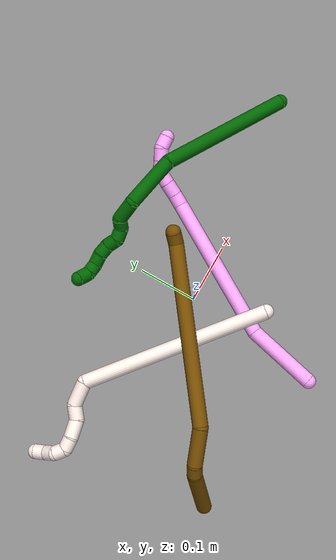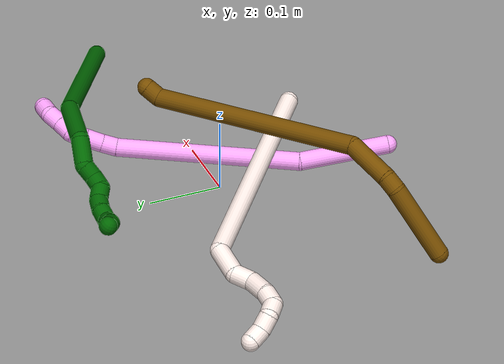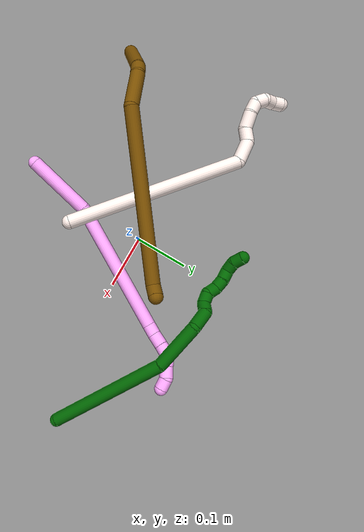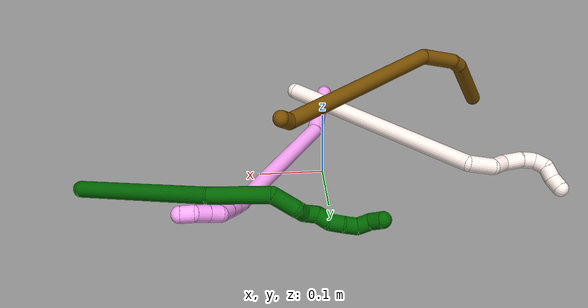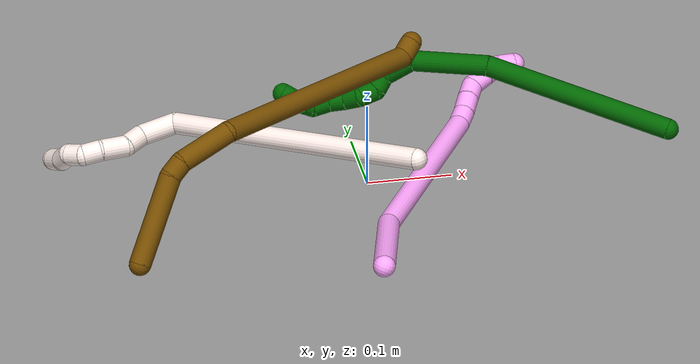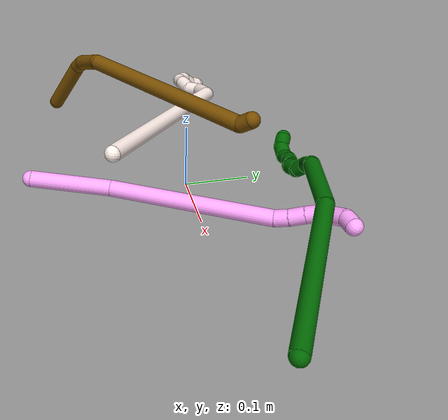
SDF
<sdf version="1.7">
 <world name="default">
  <model name="photoneo_s_sensor">
   <static>1</static>
   <pose>0 0 2 1.57079 1.57079 3.14159</pose>
   <link name="link">
    <inertial><mass>0.1</mass></inertial>
    <sensor name="sensor" type="depth">
     <update_rate>30</update_rate>
     <camera>
      <horizontal_fov>1.22</horizontal_fov>
      <image><width>1920</width><height>1200</height><format>B8G8R8</format></image>
      <clip><near>0.1</near><far>4</far></clip>
      <depth_camera><output>points</output></depth_camera>
     </camera>
     <plugin name="camera_plugin" filename="libgazebo_ros_depth_camera.so">
      <baseline>0.2</baseline>
      <alwaysOn>1</alwaysOn>
      <updateRate>0.0</updateRate>
      <cameraName>camera_ir</cameraName>
      <imageTopicName>/camera/color/image_raw</imageTopicName>
      <cameraInfoTopicName>/camera/color/camera_info</cameraInfoTopicName>
      <depthImageTopicName>/camera/depth/image_raw</depthImageTopicName>
      <depthImageCameraInfoTopicName>/camera/depth/camera_info</depthImageCameraInfoTopicName>
      <pointCloudTopicName>/camera/depth/points</pointCloudTopicName>
      <frameName>fr_optical</frameName>
      <pointCloudCutoff>0.1</pointCloudCutoff>
      <pointCloudCutoffMax>2.0</pointCloudCutoffMax>
      <distortionK1>0</distortionK1>
      <distortionK2>0</distortionK2>
      <distortionK3>0</distortionK3>
      <distortionT1>0</distortionT1>
      <distortionT2>0</distortionT2>
      <CxPrime>0</CxPrime>
      <Cx>0</Cx>
      <Cy>0</Cy>
      <focalLength>0</focalLength>
      <hackBaseline>0</hackBaseline>
     </plugin>
    </sensor>
   </link>
  </model>
  <model name="bin">
   <static>1</static>
   <link name="bottom">
    <collision name="collision-bottom">
     <pose>0 0 -0.01 0 -0 0</pose>
     <geometry><box><size>0.8 0.6 0.02</size></box></geometry>
     <surface>
      <friction><ode><mu>100</mu><mu2>100</mu2></ode></friction>
      <contact><collide_bitmask>65535</collide_bitmask></contact>
     </surface>
    </collision>
   </link>
   <link name="west_wall">
    <collision name="collision-west_wall">
     <pose>-0.41 0 0.1 0 -0 0</pose>
     <geometry><box><size>0.02 0.6 0.2</size></box></geometry>
     <surface>
      <friction><ode><mu>100</mu><mu2>100</mu2></ode></friction>
      <contact><collide_bitmask>65535</collide_bitmask></contact>
     </surface>
    </collision>
   </link>
   <link name="east_wall">
    <collision name="collision-east_wall">
     <pose>0.41 0 0.1 0 -0 0</pose>
     <geometry><box><size>0.02 0.6 0.2</size></box></geometry>
     <surface>
      <friction><ode><mu>100</mu><mu2>100</mu2></ode></friction>
      <contact><collide_bitmask>65535</collide_bitmask></contact>
     </surface>
    </collision>
   </link>
   <link name="south_wall">
    <collision name="collision-south_wall">
     <pose>0 -0.31 0.1 0 -0 0</pose>
     <geometry><box><size>0.8 0.02 0.2</size></box></geometry>
     <surface>
      <friction><ode><mu>100</mu><mu2>100</mu2></ode></friction>
      <contact><collide_bitmask>65535</collide_bitmask></contact>
     </surface>
    </collision>
   </link>
   <link name="north_wall">
    <collision name="collision-north_wall">
     <pose>0 0.31 0.1 0 -0 0</pose>
     <geometry><box><size>0.8 0.02 0.2</size></box></geometry>
     <surface>
      <friction><ode><mu>100</mu><mu2>100</mu2></ode></friction>
      <contact><collide_bitmask>65535</collide_bitmask></contact>
     </surface>
    </collision>
   </link>
  </model>
  <model name="4">
   <static>0</static>
   <link name="4">
    <collision name="collision-cylinder-e_1_1_4">
     <pose>0.022669 0.05482 0.012873 -1.34015 0.382721 -0.304637</pose>
     <geometry><cylinder><radius>0.0125</radius><length>0.121406</length></cylinder></geometry>
     <surface>
      <friction><ode><mu>1.16</mu><mu2>1.16</mu2><slip1>0</slip1><slip2>0</slip2></ode></friction>
      <contact><ode><kp>1e+06</kp><kd>1</kd><max_vel>0</max_vel><min_depth>0.001</min_depth></ode></contact>
     </surface>
    </collision>
    <visual name="visual-cylinder-e_1_1_4">
     <pose>0.022669 0.05482 0.012873 -1.34015 0.382721 -0.304637</pose>
     <geometry><cylinder><radius>0.0125</radius><length>0.121406</length></cylinder></geometry>
     <material><ambient>1 0.65098 0.996078 1</ambient></material>
    </visual>
    <collision name="collision-cylinder-e_2_4_5">
     <pose>0.113514 0.200778 0.078413 -1.0468 0.574746 -0.337871</pose>
     <geometry><cylinder><radius>0.0125</radius><length>0.250821</length></cylinder></geometry>
     <surface>
      <friction><ode><mu>1.16</mu><mu2>1.16</mu2><slip1>0</slip1><slip2>0</slip2></ode></friction>
      <contact><ode><kp>1e+06</kp><kd>1</kd><max_vel>0</max_vel><min_depth>0.001</min_depth></ode></contact>
     </surface>
    </collision>
    <visual name="visual-cylinder-e_2_4_5">
     <pose>0.113514 0.200778 0.078413 -1.0468 0.574746 -0.337871</pose>
     <geometry><cylinder><radius>0.0125</radius><length>0.250821</length></cylinder></geometry>
     <material><ambient>1 0.65098 0.996078 1</ambient></material>
    </visual>
    <collision name="collision-cylinder-e_3_5_6">
     <pose>0.185801 0.299186 0.137616 -0.838447 0.398009 -0.179267</pose>
     <geometry><cylinder><radius>0.0125</radius><length>0.021214</length></cylinder></geometry>
     <surface>
      <friction><ode><mu>1.16</mu><mu2>1.16</mu2><slip1>0</slip1><slip2>0</slip2></ode></friction>
      <contact><ode><kp>1e+06</kp><kd>1</kd><max_vel>0</max_vel><min_depth>0.001</min_depth></ode></contact>
     </surface>
    </collision>
    <visual name="visual-cylinder-e_3_5_6">
     <pose>0.185801 0.299186 0.137616 -0.838447 0.398009 -0.179267</pose>
     <geometry><cylinder><radius>0.0125</radius><length>0.021214</length></cylinder></geometry>
     <material><ambient>1 0.65098 0.996078 1</ambient></material>
    </visual>
    <collision name="collision-cylinder-e_4_6_7">
     <pose>0.193246 0.314536 0.15204 -0.797485 0.287125 -0.121657</pose>
     <geometry><cylinder><radius>0.0125</radius><length>0.023542</length></cylinder></geometry>
     <surface>
      <friction><ode><mu>1.16</mu><mu2>1.16</mu2><slip1>0</slip1><slip2>0</slip2></ode></friction>
      <contact><ode><kp>1e+06</kp><kd>1</kd><max_vel>0</max_vel><min_depth>0.001</min_depth></ode></contact>
     </surface>
    </collision>
    <visual name="visual-cylinder-e_4_6_7">
     <pose>0.193246 0.314536 0.15204 -0.797485 0.287125 -0.121657</pose>
     <geometry><cylinder><radius>0.0125</radius><length>0.023542</length></cylinder></geometry>
     <material><ambient>1 0.65098 0.996078 1</ambient></material>
    </visual>
    <collision name="collision-cylinder-e_5_7_8">
     <pose>0.200118 0.329986 0.167058 -0.801889 0.332164 -0.141877</pose>
     <geometry><cylinder><radius>0.0125</radius><length>0.021703</length></cylinder></geometry>
     <surface>
      <friction><ode><mu>1.16</mu><mu2>1.16</mu2><slip1>0</slip1><slip2>0</slip2></ode></friction>
      <contact><ode><kp>1e+06</kp><kd>1</kd><max_vel>0</max_vel><min_depth>0.001</min_depth></ode></contact>
     </surface>
    </collision>
    <visual name="visual-cylinder-e_5_7_8">
     <pose>0.200118 0.329986 0.167058 -0.801889 0.332164 -0.141877</pose>
     <geometry><cylinder><radius>0.0125</radius><length>0.021703</length></cylinder></geometry>
     <material><ambient>1 0.65098 0.996078 1</ambient></material>
    </visual>
    <collision name="collision-cylinder-e_6_8_9">
     <pose>0.209972 0.338886 0.181989 -0.193375 0.671578 -0.067674</pose>
     <geometry><cylinder><radius>0.0125</radius><length>0.020301</length></cylinder></geometry>
     <surface>
      <friction><ode><mu>1.16</mu><mu2>1.16</mu2><slip1>0</slip1><slip2>0</slip2></ode></friction>
      <contact><ode><kp>1e+06</kp><kd>1</kd><max_vel>0</max_vel><min_depth>0.001</min_depth></ode></contact>
     </surface>
    </collision>
    <visual name="visual-cylinder-e_6_8_9">
     <pose>0.209972 0.338886 0.181989 -0.193375 0.671578 -0.067674</pose>
     <geometry><cylinder><radius>0.0125</radius><length>0.020301</length></cylinder></geometry>
     <material><ambient>1 0.65098 0.996078 1</ambient></material>
    </visual>
    <collision name="collision-cylinder-e_7_9_10">
     <pose>0.22292 0.342519 0.197624 -0.262588 0.685195 -0.094127</pose>
     <geometry><cylinder><radius>0.0125</radius><length>0.020962</length></cylinder></geometry>
     <surface>
      <friction><ode><mu>1.16</mu><mu2>1.16</mu2><slip1>0</slip1><slip2>0</slip2></ode></friction>
      <contact><ode><kp>1e+06</kp><kd>1</kd><max_vel>0</max_vel><min_depth>0.001</min_depth></ode></contact>
     </surface>
    </collision>
    <visual name="visual-cylinder-e_7_9_10">
     <pose>0.22292 0.342519 0.197624 -0.262588 0.685195 -0.094127</pose>
     <geometry><cylinder><radius>0.0125</radius><length>0.020962</length></cylinder></geometry>
     <material><ambient>1 0.65098 0.996078 1</ambient></material>
    </visual>
    <collision name="collision-cylinder-e_8_10_2">
     <pose>0.238306 0.343047 0.21009 0.328794 1.06128 0.194075</pose>
     <geometry><cylinder><radius>0.0125</radius><length>0.020052</length></cylinder></geometry>
     <surface>
      <friction><ode><mu>1.16</mu><mu2>1.16</mu2><slip1>0</slip1><slip2>0</slip2></ode></friction>
      <contact><ode><kp>1e+06</kp><kd>1</kd><max_vel>0</max_vel><min_depth>0.001</min_depth></ode></contact>
     </surface>
    </collision>
    <visual name="visual-cylinder-e_8_10_2">
     <pose>0.238306 0.343047 0.21009 0.328794 1.06128 0.194075</pose>
     <geometry><cylinder><radius>0.0125</radius><length>0.020052</length></cylinder></geometry>
     <material><ambient>1 0.65098 0.996078 1</ambient></material>
    </visual>
    <collision name="collision-sphere-2">
     <pose>0.247058 0.341468 0.214718 0 -0 0</pose>
     <geometry><sphere><radius>0.0125</radius></sphere></geometry>
     <surface>
      <friction><ode><mu>1.16</mu><mu2>1.16</mu2><slip1>0</slip1><slip2>0</slip2></ode></friction>
      <contact><ode><kp>1e+06</kp><kd>1</kd><max_vel>0</max_vel><min_depth>0.001</min_depth></ode></contact>
     </surface>
    </collision>
    <visual name="visual-sphere-2">
     <pose>0.247058 0.341468 0.214718 0 -0 0</pose>
     <geometry><sphere><radius>0.0125</radius></sphere></geometry>
     <material><ambient>1 0.65098 0.996078 1</ambient></material>
    </visual>
    <collision name="collision-sphere-10">
     <pose>0.229553 0.344626 0.205462 0 -0 0</pose>
     <geometry><sphere><radius>0.0125</radius></sphere></geometry>
     <surface>
      <friction><ode><mu>1.16</mu><mu2>1.16</mu2><slip1>0</slip1><slip2>0</slip2></ode></friction>
      <contact><ode><kp>1e+06</kp><kd>1</kd><max_vel>0</max_vel><min_depth>0.001</min_depth></ode></contact>
     </surface>
    </collision>
    <visual name="visual-sphere-10">
     <pose>0.229553 0.344626 0.205462 0 -0 0</pose>
     <geometry><sphere><radius>0.0125</radius></sphere></geometry>
     <material><ambient>1 0.65098 0.996078 1</ambient></material>
    </visual>
    <collision name="collision-sphere-9">
     <pose>0.216288 0.340413 0.189787 0 -0 0</pose>
     <geometry><sphere><radius>0.0125</radius></sphere></geometry>
     <surface>
      <friction><ode><mu>1.16</mu><mu2>1.16</mu2><slip1>0</slip1><slip2>0</slip2></ode></friction>
      <contact><ode><kp>1e+06</kp><kd>1</kd><max_vel>0</max_vel><min_depth>0.001</min_depth></ode></contact>
     </surface>
    </collision>
    <visual name="visual-sphere-9">
     <pose>0.216288 0.340413 0.189787 0 -0 0</pose>
     <geometry><sphere><radius>0.0125</radius></sphere></geometry>
     <material><ambient>1 0.65098 0.996078 1</ambient></material>
    </visual>
    <collision name="collision-sphere-4">
     <pose>0.045339 0.10964 0.025747 0 -0 0</pose>
     <geometry><sphere><radius>0.0125</radius></sphere></geometry>
     <surface>
      <friction><ode><mu>1.16</mu><mu2>1.16</mu2><slip1>0</slip1><slip2>0</slip2></ode></friction>
      <contact><ode><kp>1e+06</kp><kd>1</kd><max_vel>0</max_vel><min_depth>0.001</min_depth></ode></contact>
     </surface>
    </collision>
    <visual name="visual-sphere-4">
     <pose>0.045339 0.10964 0.025747 0 -0 0</pose>
     <geometry><sphere><radius>0.0125</radius></sphere></geometry>
     <material><ambient>1 0.65098 0.996078 1</ambient></material>
    </visual>
    <collision name="collision-sphere-1">
     <geometry><sphere><radius>0.0125</radius></sphere></geometry>
     <surface>
      <friction><ode><mu>1.16</mu><mu2>1.16</mu2><slip1>0</slip1><slip2>0</slip2></ode></friction>
      <contact><ode><kp>1e+06</kp><kd>1</kd><max_vel>0</max_vel><min_depth>0.001</min_depth></ode></contact>
     </surface>
    </collision>
    <visual name="visual-sphere-1">
     <geometry><sphere><radius>0.0125</radius></sphere></geometry>
     <material><ambient>1 0.65098 0.996078 1</ambient></material>
    </visual>
    <collision name="collision-sphere-8">
     <pose>0.203656 0.337359 0.174191 0 -0 0</pose>
     <geometry><sphere><radius>0.0125</radius></sphere></geometry>
     <surface>
      <friction><ode><mu>1.16</mu><mu2>1.16</mu2><slip1>0</slip1><slip2>0</slip2></ode></friction>
      <contact><ode><kp>1e+06</kp><kd>1</kd><max_vel>0</max_vel><min_depth>0.001</min_depth></ode></contact>
     </surface>
    </collision>
    <visual name="visual-sphere-8">
     <pose>0.203656 0.337359 0.174191 0 -0 0</pose>
     <geometry><sphere><radius>0.0125</radius></sphere></geometry>
     <material><ambient>1 0.65098 0.996078 1</ambient></material>
    </visual>
    <collision name="collision-sphere-5">
     <pose>0.18169 0.291916 0.131079 0 -0 0</pose>
     <geometry><sphere><radius>0.0125</radius></sphere></geometry>
     <surface>
      <friction><ode><mu>1.16</mu><mu2>1.16</mu2><slip1>0</slip1><slip2>0</slip2></ode></friction>
      <contact><ode><kp>1e+06</kp><kd>1</kd><max_vel>0</max_vel><min_depth>0.001</min_depth></ode></contact>
     </surface>
    </collision>
    <visual name="visual-sphere-5">
     <pose>0.18169 0.291916 0.131079 0 -0 0</pose>
     <geometry><sphere><radius>0.0125</radius></sphere></geometry>
     <material><ambient>1 0.65098 0.996078 1</ambient></material>
    </visual>
    <collision name="collision-sphere-6">
     <pose>0.189912 0.306457 0.144154 0 -0 0</pose>
     <geometry><sphere><radius>0.0125</radius></sphere></geometry>
     <surface>
      <friction><ode><mu>1.16</mu><mu2>1.16</mu2><slip1>0</slip1><slip2>0</slip2></ode></friction>
      <contact><ode><kp>1e+06</kp><kd>1</kd><max_vel>0</max_vel><min_depth>0.001</min_depth></ode></contact>
     </surface>
    </collision>
    <visual name="visual-sphere-6">
     <pose>0.189912 0.306457 0.144154 0 -0 0</pose>
     <geometry><sphere><radius>0.0125</radius></sphere></geometry>
     <material><ambient>1 0.65098 0.996078 1</ambient></material>
    </visual>
    <collision name="collision-sphere-7">
     <pose>0.196579 0.322614 0.159925 0 -0 0</pose>
     <geometry><sphere><radius>0.0125</radius></sphere></geometry>
     <surface>
      <friction><ode><mu>1.16</mu><mu2>1.16</mu2><slip1>0</slip1><slip2>0</slip2></ode></friction>
      <contact><ode><kp>1e+06</kp><kd>1</kd><max_vel>0</max_vel><min_depth>0.001</min_depth></ode></contact>
     </surface>
    </collision>
    <visual name="visual-sphere-7">
     <pose>0.196579 0.322614 0.159925 0 -0 0</pose>
     <geometry><sphere><radius>0.0125</radius></sphere></geometry>
     <material><ambient>1 0.65098 0.996078 1</ambient></material>
    </visual>
    <inertial>
     <pose>0.115544 0.197733 0.086809 0 -0 0</pose>
     <mass>0.5</mass>
     <inertia>
      <ixx>0.0008</ixx>
      <ixy>0</ixy>
      <ixz>0</ixz>
      <iyy>0.000505</iyy>
      <iyz>0</iyz>
      <izz>-0.001871</izz>
     </inertia>
    </inertial>
   </link>
   <pose>-0.025593 -0.234813 0.027071 -0.174132 0.486715 0.131222</pose>
  </model>
  <model name="6">
   <static>0</static>
   <link name="6">
    <collision name="collision-cylinder-e_1_1_4">
     <pose>-0.097245 0.05458 -0.026614 -2.02449 -1.01261 1.45153</pose>
     <geometry><cylinder><radius>0.0125</radius><length>0.229294</length></cylinder></geometry>
     <surface>
      <friction><ode><mu>1.16</mu><mu2>1.16</mu2><slip1>0</slip1><slip2>0</slip2></ode></friction>
      <contact><ode><kp>1e+06</kp><kd>1</kd><max_vel>0</max_vel><min_depth>0.001</min_depth></ode></contact>
     </surface>
    </collision>
    <visual name="visual-cylinder-e_1_1_4">
     <pose>-0.097245 0.05458 -0.026614 -2.02449 -1.01261 1.45153</pose>
     <geometry><cylinder><radius>0.0125</radius><length>0.229294</length></cylinder></geometry>
     <material><ambient>0 0.392157 0.003922 1</ambient></material>
    </visual>
    <collision name="collision-cylinder-e_2_4_5">
     <pose>-0.222978 0.142758 -0.065187 -1.91274 -0.673992 0.921838</pose>
     <geometry><cylinder><radius>0.0125</radius><length>0.091288</length></cylinder></geometry>
     <surface>
      <friction><ode><mu>1.16</mu><mu2>1.16</mu2><slip1>0</slip1><slip2>0</slip2></ode></friction>
      <contact><ode><kp>1e+06</kp><kd>1</kd><max_vel>0</max_vel><min_depth>0.001</min_depth></ode></contact>
     </surface>
    </collision>
    <visual name="visual-cylinder-e_2_4_5">
     <pose>-0.222978 0.142758 -0.065187 -1.91274 -0.673992 0.921838</pose>
     <geometry><cylinder><radius>0.0125</radius><length>0.091288</length></cylinder></geometry>
     <material><ambient>0 0.392157 0.003922 1</ambient></material>
    </visual>
    <collision name="collision-cylinder-e_3_5_6">
     <pose>-0.259197 0.1931 -0.071251 -1.23231 -0.410831 0.292967</pose>
     <geometry><cylinder><radius>0.0125</radius><length>0.038724</length></cylinder></geometry>
     <surface>
      <friction><ode><mu>1.16</mu><mu2>1.16</mu2><slip1>0</slip1><slip2>0</slip2></ode></friction>
      <contact><ode><kp>1e+06</kp><kd>1</kd><max_vel>0</max_vel><min_depth>0.001</min_depth></ode></contact>
     </surface>
    </collision>
    <visual name="visual-cylinder-e_3_5_6">
     <pose>-0.259197 0.1931 -0.071251 -1.23231 -0.410831 0.292967</pose>
     <geometry><cylinder><radius>0.0125</radius><length>0.038724</length></cylinder></geometry>
     <material><ambient>0 0.392157 0.003922 1</ambient></material>
    </visual>
    <collision name="collision-cylinder-e_4_6_7">
     <pose>-0.264081 0.219068 -0.062525 -1.27297 0.28716 -0.212902</pose>
     <geometry><cylinder><radius>0.0125</radius><length>0.020121</length></cylinder></geometry>
     <surface>
      <friction><ode><mu>1.16</mu><mu2>1.16</mu2><slip1>0</slip1><slip2>0</slip2></ode></friction>
      <contact><ode><kp>1e+06</kp><kd>1</kd><max_vel>0</max_vel><min_depth>0.001</min_depth></ode></contact>
     </surface>
    </collision>
    <visual name="visual-cylinder-e_4_6_7">
     <pose>-0.264081 0.219068 -0.062525 -1.27297 0.28716 -0.212902</pose>
     <geometry><cylinder><radius>0.0125</radius><length>0.020121</length></cylinder></geometry>
     <material><ambient>0 0.392157 0.003922 1</ambient></material>
    </visual>
    <collision name="collision-cylinder-e_5_7_8">
     <pose>-0.26391 0.237935 -0.060502 -1.65433 -0.270032 0.293265</pose>
     <geometry><cylinder><radius>0.0125</radius><length>0.020083</length></cylinder></geometry>
     <surface>
      <friction><ode><mu>1.16</mu><mu2>1.16</mu2><slip1>0</slip1><slip2>0</slip2></ode></friction>
      <contact><ode><kp>1e+06</kp><kd>1</kd><max_vel>0</max_vel><min_depth>0.001</min_depth></ode></contact>
     </surface>
    </collision>
    <visual name="visual-cylinder-e_5_7_8">
     <pose>-0.26391 0.237935 -0.060502 -1.65433 -0.270032 0.293265</pose>
     <geometry><cylinder><radius>0.0125</radius><length>0.020083</length></cylinder></geometry>
     <material><ambient>0 0.392157 0.003922 1</ambient></material>
    </visual>
    <collision name="collision-cylinder-e_6_8_9">
     <pose>-0.273503 0.254476 -0.058551 -1.1904 -0.749592 0.520654</pose>
     <geometry><cylinder><radius>0.0125</radius><length>0.020296</length></cylinder></geometry>
     <surface>
      <friction><ode><mu>1.16</mu><mu2>1.16</mu2><slip1>0</slip1><slip2>0</slip2></ode></friction>
      <contact><ode><kp>1e+06</kp><kd>1</kd><max_vel>0</max_vel><min_depth>0.001</min_depth></ode></contact>
     </surface>
    </collision>
    <visual name="visual-cylinder-e_6_8_9">
     <pose>-0.273503 0.254476 -0.058551 -1.1904 -0.749592 0.520654</pose>
     <geometry><cylinder><radius>0.0125</radius><length>0.020296</length></cylinder></geometry>
     <material><ambient>0 0.392157 0.003922 1</ambient></material>
    </visual>
    <collision name="collision-cylinder-e_7_9_10">
     <pose>-0.286181 0.269598 -0.05654 -1.66131 -0.609331 0.663156</pose>
     <geometry><cylinder><radius>0.0125</radius><length>0.020141</length></cylinder></geometry>
     <surface>
      <friction><ode><mu>1.16</mu><mu2>1.16</mu2><slip1>0</slip1><slip2>0</slip2></ode></friction>
      <contact><ode><kp>1e+06</kp><kd>1</kd><max_vel>0</max_vel><min_depth>0.001</min_depth></ode></contact>
     </surface>
    </collision>
    <visual name="visual-cylinder-e_7_9_10">
     <pose>-0.286181 0.269598 -0.05654 -1.66131 -0.609331 0.663156</pose>
     <geometry><cylinder><radius>0.0125</radius><length>0.020141</length></cylinder></geometry>
     <material><ambient>0 0.392157 0.003922 1</ambient></material>
    </visual>
    <collision name="collision-cylinder-e_8_10_11">
     <pose>-0.295493 0.287147 -0.058011 -1.64839 -0.362594 0.391166</pose>
     <geometry><cylinder><radius>0.0125</radius><length>0.020007</length></cylinder></geometry>
     <surface>
      <friction><ode><mu>1.16</mu><mu2>1.16</mu2><slip1>0</slip1><slip2>0</slip2></ode></friction>
      <contact><ode><kp>1e+06</kp><kd>1</kd><max_vel>0</max_vel><min_depth>0.001</min_depth></ode></contact>
     </surface>
    </collision>
    <visual name="visual-cylinder-e_8_10_11">
     <pose>-0.295493 0.287147 -0.058011 -1.64839 -0.362594 0.391166</pose>
     <geometry><cylinder><radius>0.0125</radius><length>0.020007</length></cylinder></geometry>
     <material><ambient>0 0.392157 0.003922 1</ambient></material>
    </visual>
    <collision name="collision-cylinder-e_9_11_12">
     <pose>-0.30471 0.302396 -0.064464 -2.33938 -0.60265 1.26483</pose>
     <geometry><cylinder><radius>0.0125</radius><length>0.020004</length></cylinder></geometry>
     <surface>
      <friction><ode><mu>1.16</mu><mu2>1.16</mu2><slip1>0</slip1><slip2>0</slip2></ode></friction>
      <contact><ode><kp>1e+06</kp><kd>1</kd><max_vel>0</max_vel><min_depth>0.001</min_depth></ode></contact>
     </surface>
    </collision>
    <visual name="visual-cylinder-e_9_11_12">
     <pose>-0.30471 0.302396 -0.064464 -2.33938 -0.60265 1.26483</pose>
     <geometry><cylinder><radius>0.0125</radius><length>0.020004</length></cylinder></geometry>
     <material><ambient>0 0.392157 0.003922 1</ambient></material>
    </visual>
    <collision name="collision-cylinder-e_10_12_2">
     <pose>-0.318844 0.311955 -0.074136 -2.39686 -1.00594 1.90685</pose>
     <geometry><cylinder><radius>0.0125</radius><length>0.020042</length></cylinder></geometry>
     <surface>
      <friction><ode><mu>1.16</mu><mu2>1.16</mu2><slip1>0</slip1><slip2>0</slip2></ode></friction>
      <contact><ode><kp>1e+06</kp><kd>1</kd><max_vel>0</max_vel><min_depth>0.001</min_depth></ode></contact>
     </surface>
    </collision>
    <visual name="visual-cylinder-e_10_12_2">
     <pose>-0.318844 0.311955 -0.074136 -2.39686 -1.00594 1.90685</pose>
     <geometry><cylinder><radius>0.0125</radius><length>0.020042</length></cylinder></geometry>
     <material><ambient>0 0.392157 0.003922 1</ambient></material>
    </visual>
    <collision name="collision-sphere-2">
     <pose>-0.327308 0.315591 -0.07808 0 -0 0</pose>
     <geometry><sphere><radius>0.0125</radius></sphere></geometry>
     <surface>
      <friction><ode><mu>1.16</mu><mu2>1.16</mu2><slip1>0</slip1><slip2>0</slip2></ode></friction>
      <contact><ode><kp>1e+06</kp><kd>1</kd><max_vel>0</max_vel><min_depth>0.001</min_depth></ode></contact>
     </surface>
    </collision>
    <visual name="visual-sphere-2">
     <pose>-0.327308 0.315591 -0.07808 0 -0 0</pose>
     <geometry><sphere><radius>0.0125</radius></sphere></geometry>
     <material><ambient>0 0.392157 0.003922 1</ambient></material>
    </visual>
    <collision name="collision-sphere-12">
     <pose>-0.31038 0.308319 -0.070192 0 -0 0</pose>
     <geometry><sphere><radius>0.0125</radius></sphere></geometry>
     <surface>
      <friction><ode><mu>1.16</mu><mu2>1.16</mu2><slip1>0</slip1><slip2>0</slip2></ode></friction>
      <contact><ode><kp>1e+06</kp><kd>1</kd><max_vel>0</max_vel><min_depth>0.001</min_depth></ode></contact>
     </surface>
    </collision>
    <visual name="visual-sphere-12">
     <pose>-0.31038 0.308319 -0.070192 0 -0 0</pose>
     <geometry><sphere><radius>0.0125</radius></sphere></geometry>
     <material><ambient>0 0.392157 0.003922 1</ambient></material>
    </visual>
    <collision name="collision-sphere-11">
     <pose>-0.299041 0.296472 -0.058736 0 -0 0</pose>
     <geometry><sphere><radius>0.0125</radius></sphere></geometry>
     <surface>
      <friction><ode><mu>1.16</mu><mu2>1.16</mu2><slip1>0</slip1><slip2>0</slip2></ode></friction>
      <contact><ode><kp>1e+06</kp><kd>1</kd><max_vel>0</max_vel><min_depth>0.001</min_depth></ode></contact>
     </surface>
    </collision>
    <visual name="visual-sphere-11">
     <pose>-0.299041 0.296472 -0.058736 0 -0 0</pose>
     <geometry><sphere><radius>0.0125</radius></sphere></geometry>
     <material><ambient>0 0.392157 0.003922 1</ambient></material>
    </visual>
    <collision name="collision-sphere-10">
     <pose>-0.291945 0.277822 -0.057286 0 -0 0</pose>
     <geometry><sphere><radius>0.0125</radius></sphere></geometry>
     <surface>
      <friction><ode><mu>1.16</mu><mu2>1.16</mu2><slip1>0</slip1><slip2>0</slip2></ode></friction>
      <contact><ode><kp>1e+06</kp><kd>1</kd><max_vel>0</max_vel><min_depth>0.001</min_depth></ode></contact>
     </surface>
    </collision>
    <visual name="visual-sphere-10">
     <pose>-0.291945 0.277822 -0.057286 0 -0 0</pose>
     <geometry><sphere><radius>0.0125</radius></sphere></geometry>
     <material><ambient>0 0.392157 0.003922 1</ambient></material>
    </visual>
    <collision name="collision-sphere-9">
     <pose>-0.280418 0.261374 -0.055793 0 -0 0</pose>
     <geometry><sphere><radius>0.0125</radius></sphere></geometry>
     <surface>
      <friction><ode><mu>1.16</mu><mu2>1.16</mu2><slip1>0</slip1><slip2>0</slip2></ode></friction>
      <contact><ode><kp>1e+06</kp><kd>1</kd><max_vel>0</max_vel><min_depth>0.001</min_depth></ode></contact>
     </surface>
    </collision>
    <visual name="visual-sphere-9">
     <pose>-0.280418 0.261374 -0.055793 0 -0 0</pose>
     <geometry><sphere><radius>0.0125</radius></sphere></geometry>
     <material><ambient>0 0.392157 0.003922 1</ambient></material>
    </visual>
    <collision name="collision-sphere-4">
     <pose>-0.194491 0.109159 -0.053228 0 -0 0</pose>
     <geometry><sphere><radius>0.0125</radius></sphere></geometry>
     <surface>
      <friction><ode><mu>1.16</mu><mu2>1.16</mu2><slip1>0</slip1><slip2>0</slip2></ode></friction>
      <contact><ode><kp>1e+06</kp><kd>1</kd><max_vel>0</max_vel><min_depth>0.001</min_depth></ode></contact>
     </surface>
    </collision>
    <visual name="visual-sphere-4">
     <pose>-0.194491 0.109159 -0.053228 0 -0 0</pose>
     <geometry><sphere><radius>0.0125</radius></sphere></geometry>
     <material><ambient>0 0.392157 0.003922 1</ambient></material>
    </visual>
    <collision name="collision-sphere-1">
     <geometry><sphere><radius>0.0125</radius></sphere></geometry>
     <surface>
      <friction><ode><mu>1.16</mu><mu2>1.16</mu2><slip1>0</slip1><slip2>0</slip2></ode></friction>
      <contact><ode><kp>1e+06</kp><kd>1</kd><max_vel>0</max_vel><min_depth>0.001</min_depth></ode></contact>
     </surface>
    </collision>
    <visual name="visual-sphere-1">
     <geometry><sphere><radius>0.0125</radius></sphere></geometry>
     <material><ambient>0 0.392157 0.003922 1</ambient></material>
    </visual>
    <collision name="collision-sphere-8">
     <pose>-0.266589 0.247579 -0.061309 0 -0 0</pose>
     <geometry><sphere><radius>0.0125</radius></sphere></geometry>
     <surface>
      <friction><ode><mu>1.16</mu><mu2>1.16</mu2><slip1>0</slip1><slip2>0</slip2></ode></friction>
      <contact><ode><kp>1e+06</kp><kd>1</kd><max_vel>0</max_vel><min_depth>0.001</min_depth></ode></contact>
     </surface>
    </collision>
    <visual name="visual-sphere-8">
     <pose>-0.266589 0.247579 -0.061309 0 -0 0</pose>
     <geometry><sphere><radius>0.0125</radius></sphere></geometry>
     <material><ambient>0 0.392157 0.003922 1</ambient></material>
    </visual>
    <collision name="collision-sphere-5">
     <pose>-0.251465 0.176357 -0.077145 0 -0 0</pose>
     <geometry><sphere><radius>0.0125</radius></sphere></geometry>
     <surface>
      <friction><ode><mu>1.16</mu><mu2>1.16</mu2><slip1>0</slip1><slip2>0</slip2></ode></friction>
      <contact><ode><kp>1e+06</kp><kd>1</kd><max_vel>0</max_vel><min_depth>0.001</min_depth></ode></contact>
     </surface>
    </collision>
    <visual name="visual-sphere-5">
     <pose>-0.251465 0.176357 -0.077145 0 -0 0</pose>
     <geometry><sphere><radius>0.0125</radius></sphere></geometry>
     <material><ambient>0 0.392157 0.003922 1</ambient></material>
    </visual>
    <collision name="collision-sphere-6">
     <pose>-0.26693 0.209844 -0.065357 0 -0 0</pose>
     <geometry><sphere><radius>0.0125</radius></sphere></geometry>
     <surface>
      <friction><ode><mu>1.16</mu><mu2>1.16</mu2><slip1>0</slip1><slip2>0</slip2></ode></friction>
      <contact><ode><kp>1e+06</kp><kd>1</kd><max_vel>0</max_vel><min_depth>0.001</min_depth></ode></contact>
     </surface>
    </collision>
    <visual name="visual-sphere-6">
     <pose>-0.26693 0.209844 -0.065357 0 -0 0</pose>
     <geometry><sphere><radius>0.0125</radius></sphere></geometry>
     <material><ambient>0 0.392157 0.003922 1</ambient></material>
    </visual>
    <collision name="collision-sphere-7">
     <pose>-0.261231 0.228292 -0.059694 0 -0 0</pose>
     <geometry><sphere><radius>0.0125</radius></sphere></geometry>
     <surface>
      <friction><ode><mu>1.16</mu><mu2>1.16</mu2><slip1>0</slip1><slip2>0</slip2></ode></friction>
      <contact><ode><kp>1e+06</kp><kd>1</kd><max_vel>0</max_vel><min_depth>0.001</min_depth></ode></contact>
     </surface>
    </collision>
    <visual name="visual-sphere-7">
     <pose>-0.261231 0.228292 -0.059694 0 -0 0</pose>
     <geometry><sphere><radius>0.0125</radius></sphere></geometry>
     <material><ambient>0 0.392157 0.003922 1</ambient></material>
    </visual>
    <inertial>
     <pose>-0.186033 0.141704 -0.047097 0 -0 0</pose>
     <mass>0.5</mass>
     <inertia>
      <ixx>0.000662</ixx>
      <ixy>0</ixy>
      <ixz>0</ixz>
      <iyy>0.001343</iyy>
      <iyz>0</iyz>
      <izz>0.000357</izz>
     </inertia>
    </inertial>
   </link>
   <pose>0.369992 0.038751 0.012441 -2.70638 0.232348 -1.08657</pose>
  </model>
  <model name="11">
   <static>0</static>
   <link name="11">
    <collision name="collision-cylinder-e_1_1_4">
     <pose>-0.136852 0.077561 -0.026292 -1.89763 -1.03153 1.33825</pose>
     <geometry><cylinder><radius>0.0125</radius><length>0.31897</length></cylinder></geometry>
     <surface>
      <friction><ode><mu>1.16</mu><mu2>1.16</mu2><slip1>0</slip1><slip2>0</slip2></ode></friction>
      <contact><ode><kp>1e+06</kp><kd>1</kd><max_vel>0</max_vel><min_depth>0.001</min_depth></ode></contact>
     </surface>
    </collision>
    <visual name="visual-cylinder-e_1_1_4">
     <pose>-0.136852 0.077561 -0.026292 -1.89763 -1.03153 1.33825</pose>
     <geometry><cylinder><radius>0.0125</radius><length>0.31897</length></cylinder></geometry>
     <material><ambient>1 0.933333 0.909804 1</ambient></material>
    </visual>
    <collision name="collision-cylinder-e_2_4_5">
     <pose>-0.280224 0.175301 -0.051481 -1.51617 -0.312098 0.295746</pose>
     <geometry><cylinder><radius>0.0125</radius><length>0.04247</length></cylinder></geometry>
     <surface>
      <friction><ode><mu>1.16</mu><mu2>1.16</mu2><slip1>0</slip1><slip2>0</slip2></ode></friction>
      <contact><ode><kp>1e+06</kp><kd>1</kd><max_vel>0</max_vel><min_depth>0.001</min_depth></ode></contact>
     </surface>
    </collision>
    <visual name="visual-cylinder-e_2_4_5">
     <pose>-0.280224 0.175301 -0.051481 -1.51617 -0.312098 0.295746</pose>
     <geometry><cylinder><radius>0.0125</radius><length>0.04247</length></cylinder></geometry>
     <material><ambient>1 0.933333 0.909804 1</ambient></material>
    </visual>
    <collision name="collision-cylinder-e_3_5_6">
     <pose>-0.283359 0.207595 -0.049264 -1.47913 0.271361 -0.247814</pose>
     <geometry><cylinder><radius>0.0125</radius><length>0.025258</length></cylinder></geometry>
     <surface>
      <friction><ode><mu>1.16</mu><mu2>1.16</mu2><slip1>0</slip1><slip2>0</slip2></ode></friction>
      <contact><ode><kp>1e+06</kp><kd>1</kd><max_vel>0</max_vel><min_depth>0.001</min_depth></ode></contact>
     </surface>
    </collision>
    <visual name="visual-cylinder-e_3_5_6">
     <pose>-0.283359 0.207595 -0.049264 -1.47913 0.271361 -0.247814</pose>
     <geometry><cylinder><radius>0.0125</radius><length>0.025258</length></cylinder></geometry>
     <material><ambient>1 0.933333 0.909804 1</ambient></material>
    </visual>
    <collision name="collision-cylinder-e_4_6_7">
     <pose>-0.282228 0.234804 -0.050884 -1.74999 -0.145925 0.174597</pose>
     <geometry><cylinder><radius>0.0125</radius><length>0.031008</length></cylinder></geometry>
     <surface>
      <friction><ode><mu>1.16</mu><mu2>1.16</mu2><slip1>0</slip1><slip2>0</slip2></ode></friction>
      <contact><ode><kp>1e+06</kp><kd>1</kd><max_vel>0</max_vel><min_depth>0.001</min_depth></ode></contact>
     </surface>
    </collision>
    <visual name="visual-cylinder-e_4_6_7">
     <pose>-0.282228 0.234804 -0.050884 -1.74999 -0.145925 0.174597</pose>
     <geometry><cylinder><radius>0.0125</radius><length>0.031008</length></cylinder></geometry>
     <material><ambient>1 0.933333 0.909804 1</ambient></material>
    </visual>
    <collision name="collision-cylinder-e_5_7_8">
     <pose>-0.287974 0.260065 -0.053902 -1.5987 -0.330666 0.339847</pose>
     <geometry><cylinder><radius>0.0125</radius><length>0.021508</length></cylinder></geometry>
     <surface>
      <friction><ode><mu>1.16</mu><mu2>1.16</mu2><slip1>0</slip1><slip2>0</slip2></ode></friction>
      <contact><ode><kp>1e+06</kp><kd>1</kd><max_vel>0</max_vel><min_depth>0.001</min_depth></ode></contact>
     </surface>
    </collision>
    <visual name="visual-cylinder-e_5_7_8">
     <pose>-0.287974 0.260065 -0.053902 -1.5987 -0.330666 0.339847</pose>
     <geometry><cylinder><radius>0.0125</radius><length>0.021508</length></cylinder></geometry>
     <material><ambient>1 0.933333 0.909804 1</ambient></material>
    </visual>
    <collision name="collision-cylinder-e_6_8_9">
     <pose>-0.300171 0.275153 -0.054755 -1.68596 -1.05348 1.15654</pose>
     <geometry><cylinder><radius>0.0125</radius><length>0.020032</length></cylinder></geometry>
     <surface>
      <friction><ode><mu>1.16</mu><mu2>1.16</mu2><slip1>0</slip1><slip2>0</slip2></ode></friction>
      <contact><ode><kp>1e+06</kp><kd>1</kd><max_vel>0</max_vel><min_depth>0.001</min_depth></ode></contact>
     </surface>
    </collision>
    <visual name="visual-cylinder-e_6_8_9">
     <pose>-0.300171 0.275153 -0.054755 -1.68596 -1.05348 1.15654</pose>
     <geometry><cylinder><radius>0.0125</radius><length>0.020032</length></cylinder></geometry>
     <material><ambient>1 0.933333 0.909804 1</ambient></material>
    </visual>
    <collision name="collision-cylinder-e_7_9_10">
     <pose>-0.31794 0.281745 -0.050671 -0.344842 -1.07136 0.206011</pose>
     <geometry><cylinder><radius>0.0125</radius><length>0.020648</length></cylinder></geometry>
     <surface>
      <friction><ode><mu>1.16</mu><mu2>1.16</mu2><slip1>0</slip1><slip2>0</slip2></ode></friction>
      <contact><ode><kp>1e+06</kp><kd>1</kd><max_vel>0</max_vel><min_depth>0.001</min_depth></ode></contact>
     </surface>
    </collision>
    <visual name="visual-cylinder-e_7_9_10">
     <pose>-0.31794 0.281745 -0.050671 -0.344842 -1.07136 0.206011</pose>
     <geometry><cylinder><radius>0.0125</radius><length>0.020648</length></cylinder></geometry>
     <material><ambient>1 0.933333 0.909804 1</ambient></material>
    </visual>
    <collision name="collision-cylinder-e_8_10_2">
     <pose>-0.336951 0.284372 -0.044926 -0.718981 -1.42599 0.62845</pose>
     <geometry><cylinder><radius>0.0125</radius><length>0.020108</length></cylinder></geometry>
     <surface>
      <friction><ode><mu>1.16</mu><mu2>1.16</mu2><slip1>0</slip1><slip2>0</slip2></ode></friction>
      <contact><ode><kp>1e+06</kp><kd>1</kd><max_vel>0</max_vel><min_depth>0.001</min_depth></ode></contact>
     </surface>
    </collision>
    <visual name="visual-cylinder-e_8_10_2">
     <pose>-0.336951 0.284372 -0.044926 -0.718981 -1.42599 0.62845</pose>
     <geometry><cylinder><radius>0.0125</radius><length>0.020108</length></cylinder></geometry>
     <material><ambient>1 0.933333 0.909804 1</ambient></material>
    </visual>
    <collision name="collision-sphere-2">
     <pose>-0.3469 0.285328 -0.043834 0 -0 0</pose>
     <geometry><sphere><radius>0.0125</radius></sphere></geometry>
     <surface>
      <friction><ode><mu>1.16</mu><mu2>1.16</mu2><slip1>0</slip1><slip2>0</slip2></ode></friction>
      <contact><ode><kp>1e+06</kp><kd>1</kd><max_vel>0</max_vel><min_depth>0.001</min_depth></ode></contact>
     </surface>
    </collision>
    <visual name="visual-sphere-2">
     <pose>-0.3469 0.285328 -0.043834 0 -0 0</pose>
     <geometry><sphere><radius>0.0125</radius></sphere></geometry>
     <material><ambient>1 0.933333 0.909804 1</ambient></material>
    </visual>
    <collision name="collision-sphere-10">
     <pose>-0.327003 0.283417 -0.046018 0 -0 0</pose>
     <geometry><sphere><radius>0.0125</radius></sphere></geometry>
     <surface>
      <friction><ode><mu>1.16</mu><mu2>1.16</mu2><slip1>0</slip1><slip2>0</slip2></ode></friction>
      <contact><ode><kp>1e+06</kp><kd>1</kd><max_vel>0</max_vel><min_depth>0.001</min_depth></ode></contact>
     </surface>
    </collision>
    <visual name="visual-sphere-10">
     <pose>-0.327003 0.283417 -0.046018 0 -0 0</pose>
     <geometry><sphere><radius>0.0125</radius></sphere></geometry>
     <material><ambient>1 0.933333 0.909804 1</ambient></material>
    </visual>
    <collision name="collision-sphere-9">
     <pose>-0.308877 0.280074 -0.055324 0 -0 0</pose>
     <geometry><sphere><radius>0.0125</radius></sphere></geometry>
     <surface>
      <friction><ode><mu>1.16</mu><mu2>1.16</mu2><slip1>0</slip1><slip2>0</slip2></ode></friction>
      <contact><ode><kp>1e+06</kp><kd>1</kd><max_vel>0</max_vel><min_depth>0.001</min_depth></ode></contact>
     </surface>
    </collision>
    <visual name="visual-sphere-9">
     <pose>-0.308877 0.280074 -0.055324 0 -0 0</pose>
     <geometry><sphere><radius>0.0125</radius></sphere></geometry>
     <material><ambient>1 0.933333 0.909804 1</ambient></material>
    </visual>
    <collision name="collision-sphere-4">
     <pose>-0.273704 0.155122 -0.052585 0 -0 0</pose>
     <geometry><sphere><radius>0.0125</radius></sphere></geometry>
     <surface>
      <friction><ode><mu>1.16</mu><mu2>1.16</mu2><slip1>0</slip1><slip2>0</slip2></ode></friction>
      <contact><ode><kp>1e+06</kp><kd>1</kd><max_vel>0</max_vel><min_depth>0.001</min_depth></ode></contact>
     </surface>
    </collision>
    <visual name="visual-sphere-4">
     <pose>-0.273704 0.155122 -0.052585 0 -0 0</pose>
     <geometry><sphere><radius>0.0125</radius></sphere></geometry>
     <material><ambient>1 0.933333 0.909804 1</ambient></material>
    </visual>
    <collision name="collision-sphere-1">
     <geometry><sphere><radius>0.0125</radius></sphere></geometry>
     <surface>
      <friction><ode><mu>1.16</mu><mu2>1.16</mu2><slip1>0</slip1><slip2>0</slip2></ode></friction>
      <contact><ode><kp>1e+06</kp><kd>1</kd><max_vel>0</max_vel><min_depth>0.001</min_depth></ode></contact>
     </surface>
    </collision>
    <visual name="visual-sphere-1">
     <geometry><sphere><radius>0.0125</radius></sphere></geometry>
     <material><ambient>1 0.933333 0.909804 1</ambient></material>
    </visual>
    <collision name="collision-sphere-8">
     <pose>-0.291466 0.270232 -0.054186 0 -0 0</pose>
     <geometry><sphere><radius>0.0125</radius></sphere></geometry>
     <surface>
      <friction><ode><mu>1.16</mu><mu2>1.16</mu2><slip1>0</slip1><slip2>0</slip2></ode></friction>
      <contact><ode><kp>1e+06</kp><kd>1</kd><max_vel>0</max_vel><min_depth>0.001</min_depth></ode></contact>
     </surface>
    </collision>
    <visual name="visual-sphere-8">
     <pose>-0.291466 0.270232 -0.054186 0 -0 0</pose>
     <geometry><sphere><radius>0.0125</radius></sphere></geometry>
     <material><ambient>1 0.933333 0.909804 1</ambient></material>
    </visual>
    <collision name="collision-sphere-5">
     <pose>-0.286744 0.19548 -0.050378 0 -0 0</pose>
     <geometry><sphere><radius>0.0125</radius></sphere></geometry>
     <surface>
      <friction><ode><mu>1.16</mu><mu2>1.16</mu2><slip1>0</slip1><slip2>0</slip2></ode></friction>
      <contact><ode><kp>1e+06</kp><kd>1</kd><max_vel>0</max_vel><min_depth>0.001</min_depth></ode></contact>
     </surface>
    </collision>
    <visual name="visual-sphere-5">
     <pose>-0.286744 0.19548 -0.050378 0 -0 0</pose>
     <geometry><sphere><radius>0.0125</radius></sphere></geometry>
     <material><ambient>1 0.933333 0.909804 1</ambient></material>
    </visual>
    <collision name="collision-sphere-6">
     <pose>-0.279974 0.219711 -0.04815 0 -0 0</pose>
     <geometry><sphere><radius>0.0125</radius></sphere></geometry>
     <surface>
      <friction><ode><mu>1.16</mu><mu2>1.16</mu2><slip1>0</slip1><slip2>0</slip2></ode></friction>
      <contact><ode><kp>1e+06</kp><kd>1</kd><max_vel>0</max_vel><min_depth>0.001</min_depth></ode></contact>
     </surface>
    </collision>
    <visual name="visual-sphere-6">
     <pose>-0.279974 0.219711 -0.04815 0 -0 0</pose>
     <geometry><sphere><radius>0.0125</radius></sphere></geometry>
     <material><ambient>1 0.933333 0.909804 1</ambient></material>
    </visual>
    <collision name="collision-sphere-7">
     <pose>-0.284483 0.249898 -0.053618 0 -0 0</pose>
     <geometry><sphere><radius>0.0125</radius></sphere></geometry>
     <surface>
      <friction><ode><mu>1.16</mu><mu2>1.16</mu2><slip1>0</slip1><slip2>0</slip2></ode></friction>
      <contact><ode><kp>1e+06</kp><kd>1</kd><max_vel>0</max_vel><min_depth>0.001</min_depth></ode></contact>
     </surface>
    </collision>
    <visual name="visual-sphere-7">
     <pose>-0.284483 0.249898 -0.053618 0 -0 0</pose>
     <geometry><sphere><radius>0.0125</radius></sphere></geometry>
     <material><ambient>1 0.933333 0.909804 1</ambient></material>
    </visual>
    <inertial>
     <pose>-0.194015 0.134699 -0.035202 0 -0 0</pose>
     <mass>0.5</mass>
     <inertia>
      <ixx>0.001671</ixx>
      <ixy>0</ixy>
      <ixz>0</ixz>
      <iyy>0.003336</iyy>
      <iyz>0</iyz>
      <izz>0.000997</izz>
     </inertia>
    </inertial>
   </link>
   <pose>0.034599 -0.113921 0.089834 -3.0148 -0.248907 -1.21744</pose>
  </model>
  <model name="12">
   <static>0</static>
   <link name="12">
    <collision name="collision-cylinder-e_1_1_4">
     <pose>-0.010466 -0.000125 0.001633 0.076479 -1.4156 -0.065452</pose>
     <geometry><cylinder><radius>0.0125</radius><length>0.021186</length></cylinder></geometry>
     <surface>
      <friction><ode><mu>1.16</mu><mu2>1.16</mu2><slip1>0</slip1><slip2>0</slip2></ode></friction>
      <contact><ode><kp>1e+06</kp><kd>1</kd><max_vel>0</max_vel><min_depth>0.001</min_depth></ode></contact>
     </surface>
    </collision>
    <visual name="visual-cylinder-e_1_1_4">
     <pose>-0.010466 -0.000125 0.001633 0.076479 -1.4156 -0.065452</pose>
     <geometry><cylinder><radius>0.0125</radius><length>0.021186</length></cylinder></geometry>
     <material><ambient>0.466667 0.301961 0 1</ambient></material>
    </visual>
    <collision name="collision-cylinder-e_2_4_5">
     <pose>-0.142221 -0.07592 -0.027361 1.95538 -0.978397 -1.33695</pose>
     <geometry><cylinder><radius>0.0125</radius><length>0.292405</length></cylinder></geometry>
     <surface>
      <friction><ode><mu>1.16</mu><mu2>1.16</mu2><slip1>0</slip1><slip2>0</slip2></ode></friction>
      <contact><ode><kp>1e+06</kp><kd>1</kd><max_vel>0</max_vel><min_depth>0.001</min_depth></ode></contact>
     </surface>
    </collision>
    <visual name="visual-cylinder-e_2_4_5">
     <pose>-0.142221 -0.07592 -0.027361 1.95538 -0.978397 -1.33695</pose>
     <geometry><cylinder><radius>0.0125</radius><length>0.292405</length></cylinder></geometry>
     <material><ambient>0.466667 0.301961 0 1</ambient></material>
    </visual>
    <collision name="collision-cylinder-e_3_5_6">
     <pose>-0.291017 -0.16504 -0.050109 1.04093 -1.05523 -0.644704</pose>
     <geometry><cylinder><radius>0.0125</radius><length>0.063232</length></cylinder></geometry>
     <surface>
      <friction><ode><mu>1.16</mu><mu2>1.16</mu2><slip1>0</slip1><slip2>0</slip2></ode></friction>
      <contact><ode><kp>1e+06</kp><kd>1</kd><max_vel>0</max_vel><min_depth>0.001</min_depth></ode></contact>
     </surface>
    </collision>
    <visual name="visual-cylinder-e_3_5_6">
     <pose>-0.291017 -0.16504 -0.050109 1.04093 -1.05523 -0.644704</pose>
     <geometry><cylinder><radius>0.0125</radius><length>0.063232</length></cylinder></geometry>
     <material><ambient>0.466667 0.301961 0 1</ambient></material>
    </visual>
    <collision name="collision-cylinder-e_4_6_7">
     <pose>-0.327852 -0.179459 -0.038599 0.260791 -1.18777 -0.17663</pose>
     <geometry><cylinder><radius>0.0125</radius><length>0.020114</length></cylinder></geometry>
     <surface>
      <friction><ode><mu>1.16</mu><mu2>1.16</mu2><slip1>0</slip1><slip2>0</slip2></ode></friction>
      <contact><ode><kp>1e+06</kp><kd>1</kd><max_vel>0</max_vel><min_depth>0.001</min_depth></ode></contact>
     </surface>
    </collision>
    <visual name="visual-cylinder-e_4_6_7">
     <pose>-0.327852 -0.179459 -0.038599 0.260791 -1.18777 -0.17663</pose>
     <geometry><cylinder><radius>0.0125</radius><length>0.020114</length></cylinder></geometry>
     <material><ambient>0.466667 0.301961 0 1</ambient></material>
    </visual>
    <collision name="collision-cylinder-e_5_7_2">
     <pose>-0.382967 -0.167896 -0.014918 -0.558637 -1.09412 0.34589</pose>
     <geometry><cylinder><radius>0.0125</radius><length>0.103063</length></cylinder></geometry>
     <surface>
      <friction><ode><mu>1.16</mu><mu2>1.16</mu2><slip1>0</slip1><slip2>0</slip2></ode></friction>
      <contact><ode><kp>1e+06</kp><kd>1</kd><max_vel>0</max_vel><min_depth>0.001</min_depth></ode></contact>
     </surface>
    </collision>
    <visual name="visual-cylinder-e_5_7_2">
     <pose>-0.382967 -0.167896 -0.014918 -0.558637 -1.09412 0.34589</pose>
     <geometry><cylinder><radius>0.0125</radius><length>0.103063</length></cylinder></geometry>
     <material><ambient>0.466667 0.301961 0 1</ambient></material>
    </visual>
    <collision name="collision-sphere-2">
     <pose>-0.428755 -0.155364 0.005132 0 -0 0</pose>
     <geometry><sphere><radius>0.0125</radius></sphere></geometry>
     <surface>
      <friction><ode><mu>1.16</mu><mu2>1.16</mu2><slip1>0</slip1><slip2>0</slip2></ode></friction>
      <contact><ode><kp>1e+06</kp><kd>1</kd><max_vel>0</max_vel><min_depth>0.001</min_depth></ode></contact>
     </surface>
    </collision>
    <visual name="visual-sphere-2">
     <pose>-0.428755 -0.155364 0.005132 0 -0 0</pose>
     <geometry><sphere><radius>0.0125</radius></sphere></geometry>
     <material><ambient>0.466667 0.301961 0 1</ambient></material>
    </visual>
    <collision name="collision-sphere-7">
     <pose>-0.33718 -0.180428 -0.034968 0 -0 0</pose>
     <geometry><sphere><radius>0.0125</radius></sphere></geometry>
     <surface>
      <friction><ode><mu>1.16</mu><mu2>1.16</mu2><slip1>0</slip1><slip2>0</slip2></ode></friction>
      <contact><ode><kp>1e+06</kp><kd>1</kd><max_vel>0</max_vel><min_depth>0.001</min_depth></ode></contact>
     </surface>
    </collision>
    <visual name="visual-sphere-7">
     <pose>-0.33718 -0.180428 -0.034968 0 -0 0</pose>
     <geometry><sphere><radius>0.0125</radius></sphere></geometry>
     <material><ambient>0.466667 0.301961 0 1</ambient></material>
    </visual>
    <collision name="collision-sphere-6">
     <pose>-0.318524 -0.17849 -0.042231 0 -0 0</pose>
     <geometry><sphere><radius>0.0125</radius></sphere></geometry>
     <surface>
      <friction><ode><mu>1.16</mu><mu2>1.16</mu2><slip1>0</slip1><slip2>0</slip2></ode></friction>
      <contact><ode><kp>1e+06</kp><kd>1</kd><max_vel>0</max_vel><min_depth>0.001</min_depth></ode></contact>
     </surface>
    </collision>
    <visual name="visual-sphere-6">
     <pose>-0.318524 -0.17849 -0.042231 0 -0 0</pose>
     <geometry><sphere><radius>0.0125</radius></sphere></geometry>
     <material><ambient>0.466667 0.301961 0 1</ambient></material>
    </visual>
    <collision name="collision-sphere-5">
     <pose>-0.263511 -0.15159 -0.057987 0 -0 0</pose>
     <geometry><sphere><radius>0.0125</radius></sphere></geometry>
     <surface>
      <friction><ode><mu>1.16</mu><mu2>1.16</mu2><slip1>0</slip1><slip2>0</slip2></ode></friction>
      <contact><ode><kp>1e+06</kp><kd>1</kd><max_vel>0</max_vel><min_depth>0.001</min_depth></ode></contact>
     </surface>
    </collision>
    <visual name="visual-sphere-5">
     <pose>-0.263511 -0.15159 -0.057987 0 -0 0</pose>
     <geometry><sphere><radius>0.0125</radius></sphere></geometry>
     <material><ambient>0.466667 0.301961 0 1</ambient></material>
    </visual>
    <collision name="collision-sphere-1">
     <geometry><sphere><radius>0.0125</radius></sphere></geometry>
     <surface>
      <friction><ode><mu>1.16</mu><mu2>1.16</mu2><slip1>0</slip1><slip2>0</slip2></ode></friction>
      <contact><ode><kp>1e+06</kp><kd>1</kd><max_vel>0</max_vel><min_depth>0.001</min_depth></ode></contact>
     </surface>
    </collision>
    <visual name="visual-sphere-1">
     <geometry><sphere><radius>0.0125</radius></sphere></geometry>
     <material><ambient>0.466667 0.301961 0 1</ambient></material>
    </visual>
    <collision name="collision-sphere-4">
     <pose>-0.020931 -0.00025 0.003265 0 -0 0</pose>
     <geometry><sphere><radius>0.0125</radius></sphere></geometry>
     <surface>
      <friction><ode><mu>1.16</mu><mu2>1.16</mu2><slip1>0</slip1><slip2>0</slip2></ode></friction>
      <contact><ode><kp>1e+06</kp><kd>1</kd><max_vel>0</max_vel><min_depth>0.001</min_depth></ode></contact>
     </surface>
    </collision>
    <visual name="visual-sphere-4">
     <pose>-0.020931 -0.00025 0.003265 0 -0 0</pose>
     <geometry><sphere><radius>0.0125</radius></sphere></geometry>
     <material><ambient>0.466667 0.301961 0 1</ambient></material>
    </visual>
    <inertial>
     <pose>-0.212548 -0.107103 -0.026897 0 -0 0</pose>
     <mass>0.5</mass>
     <inertia>
      <ixx>-0.000841</ixx>
      <ixy>0</ixy>
      <ixz>0</ixz>
      <iyy>0.000357</iyy>
      <iyz>0</iyz>
      <izz>0.002918</izz>
     </inertia>
    </inertial>
   </link>
   <pose>0.066772 0.077494 0.137581 -2.44043 -0.470962 0.912065</pose>
  </model>
 </world>
</sdf>
